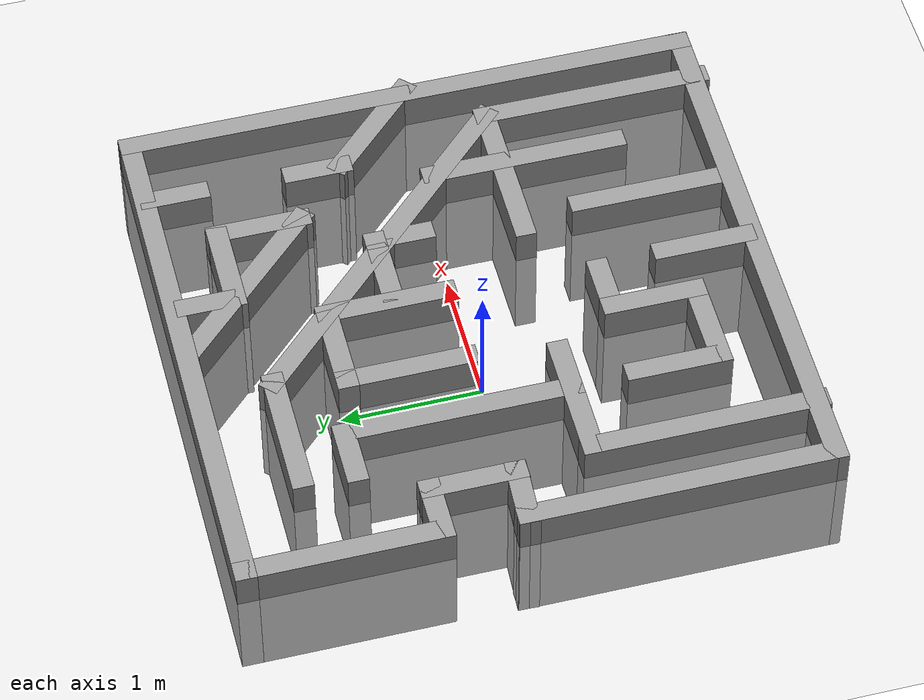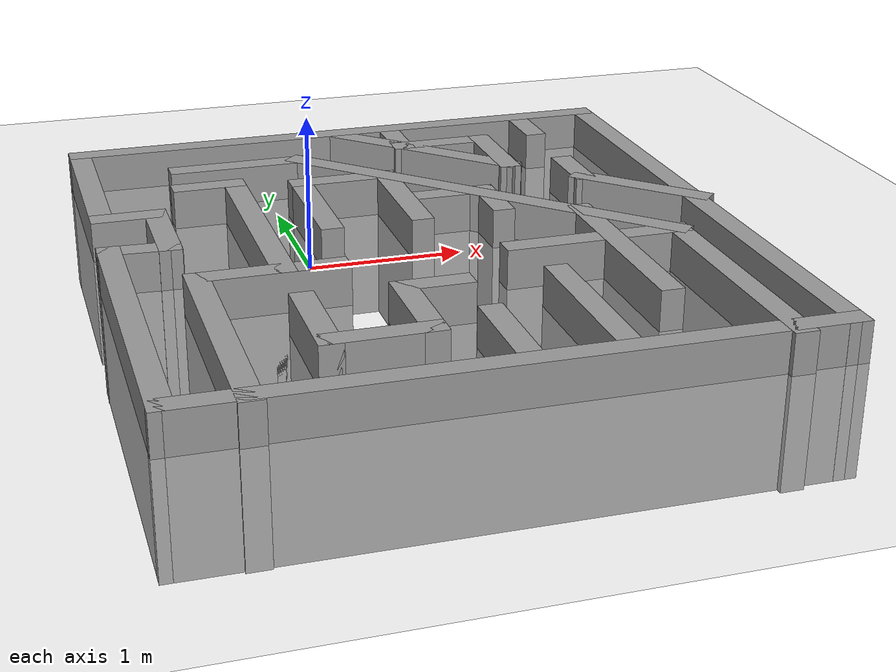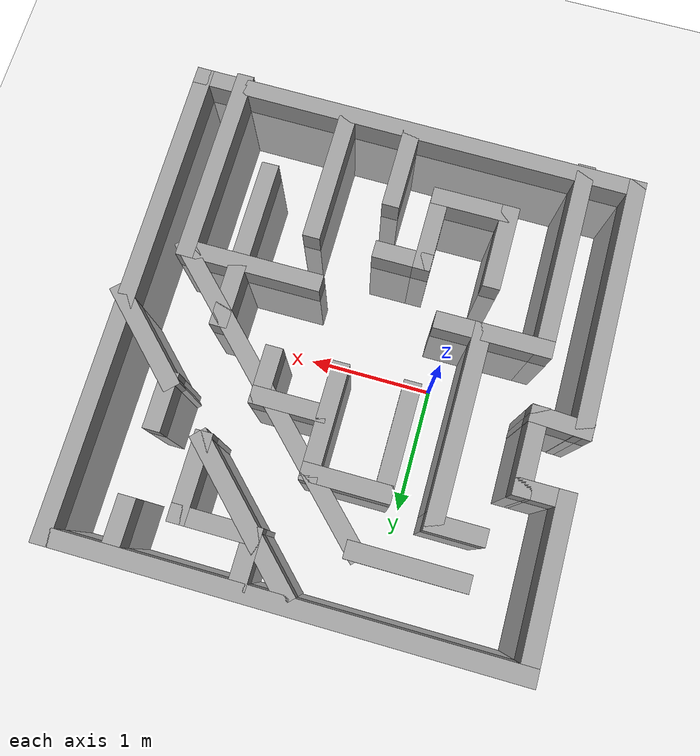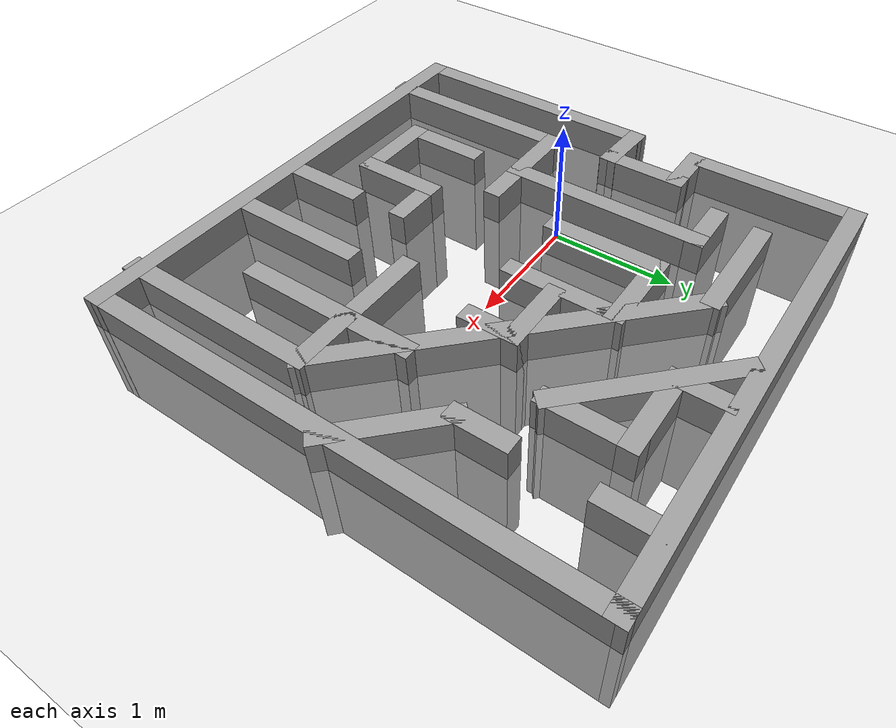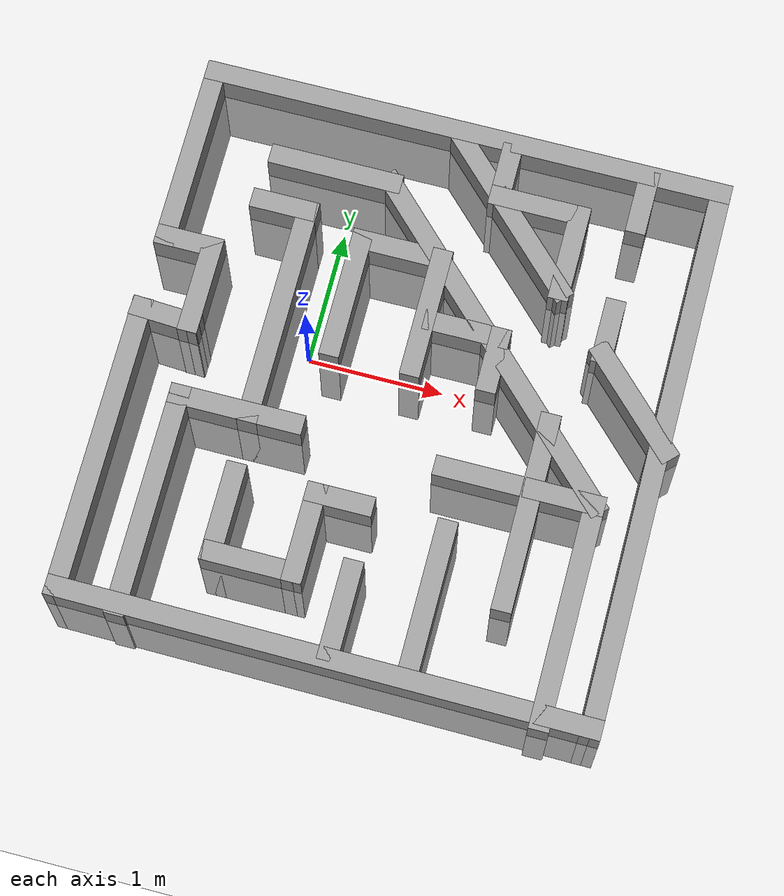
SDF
<?xml version="1.0"?>
<sdf version='1.7'>
  <world name='default'>
    <light name='sun' type='directional'>
      <cast_shadows>1</cast_shadows>
      <pose>0 0 10 0 -0 0</pose>
      <diffuse>0.8 0.8 0.8 1</diffuse>
      <specular>0.2 0.2 0.2 1</specular>
      <attenuation>
        <range>1000</range>
        <constant>0.9</constant>
        <linear>0.01</linear>
        <quadratic>0.001</quadratic>
      </attenuation>
      <direction>-0.5 0.1 -0.9</direction>
      <spot>
        <inner_angle>0</inner_angle>
        <outer_angle>0</outer_angle>
        <falloff>0</falloff>
      </spot>
    </light>
    <model name='ground_plane'>
      <static>1</static>
      <link name='link'>
        <collision name='collision'>
          <geometry>
            <plane>
              <normal>0 0 1</normal>
              <size>100 100</size>
            </plane>
          </geometry>
          <surface>
            <contact>
              <collide_bitmask>65535</collide_bitmask>
              <ode/>
            </contact>
            <friction>
              <ode>
                <mu>100</mu>
                <mu2>50</mu2>
              </ode>
              <torsional>
                <ode/>
              </torsional>
            </friction>
            <bounce/>
          </surface>
          <max_contacts>10</max_contacts>
        </collision>
        <visual name='visual'>
          <cast_shadows>0</cast_shadows>
          <geometry>
            <plane>
              <normal>0 0 1</normal>
              <size>100 100</size>
            </plane>
          </geometry>
          <material>
            <script>
              <uri>file://media/materials/scripts/gazebo.material</uri>
              <name>Gazebo/Grey</name>
            </script>
          </material>
        </visual>
        <self_collide>0</self_collide>
        <enable_wind>0</enable_wind>
        <kinematic>0</kinematic>
      </link>
    </model>
    <gravity>0 0 -9.8</gravity>
    <magnetic_field>6e-06 2.3e-05 -4.2e-05</magnetic_field>
    <atmosphere type='adiabatic'/>
    <physics type='ode'>
      <max_step_size>0.001</max_step_size>
      <real_time_factor>1</real_time_factor>
      <real_time_update_rate>1000</real_time_update_rate>
    </physics>
    <scene>
      <ambient>0.4 0.4 0.4 1</ambient>
      <background>0.7 0.7 0.7 1</background>
      <shadows>1</shadows>
    </scene>
    <audio>
      <device>default</device>
    </audio>
    <wind/>

    <model name="mazeSWY">
      <static>1</static>
      <pose>0.699615 -0.12817 -0.743142 0 -0 0</pose>
      <include>
        <uri>model://mazeSWY</uri>
      </include>
    </model>

  </world>
</sdf>

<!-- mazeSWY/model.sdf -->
<sdf version='1.6'>
  <model name='mazeSWY'>
    <pose frame=''>0.013574 -0.002409 0 0 -0 0</pose>
    <link name='Wall_0'>
      <collision name='Wall_0_Collision'>
        <geometry>
          <box>
            <size>4.03012 0.15 1</size>
          </box>
        </geometry>
        <pose frame=''>0 0 0.5 0 -0 0</pose>
      </collision>
      <visual name='Wall_0_Visual'>
        <pose frame=''>0 0 0.5 0 -0 0</pose>
        <geometry>
          <box>
            <size>4.03012 0.15 1</size>
          </box>
        </geometry>
        <material>
          <script>
            <uri>file://media/materials/scripts/gazebo.material</uri>
            <name>Gazebo/Grey</name>
          </script>
          <ambient>1 1 1 1</ambient>
        </material>
      </visual>
      <pose frame=''>-0.033574 -2.02259 0 0 0 -0.007732</pose>
    </link>
    <link name='Wall_11'>
      <collision name='Wall_11_Collision'>
        <geometry>
          <box>
            <size>1.75 0.15 1</size>
          </box>
        </geometry>
        <pose frame=''>0 0 0.5 0 -0 0</pose>
      </collision>
      <visual name='Wall_11_Visual'>
        <pose frame=''>0 0 0.5 0 -0 0</pose>
        <geometry>
          <box>
            <size>1.75 0.15 1</size>
          </box>
        </geometry>
        <material>
          <script>
            <uri>file://media/materials/scripts/gazebo.material</uri>
            <name>Gazebo/Grey</name>
          </script>
          <ambient>1 1 1 1</ambient>
        </material>
      </visual>
      <pose frame=''>-1.52357 -1.22759 0 0 -0 1.5708</pose>
    </link>

    <link name='Wall_2'>
      <collision name='Wall_2_Collision'>
        <geometry>
          <box>
            <size>4.26001 0.15 1</size>
          </box>
        </geometry>
        <pose frame=''>0 0 0.5 0 -0 0</pose>
      </collision>
      <visual name='Wall_2_Visual'>
        <pose frame=''>0 0 0.5 0 -0 0</pose>
        <geometry>
          <box>
            <size>4.26001 0.15 1</size>
          </box>
        </geometry>
        <material>
          <script>
            <uri>file://media/materials/scripts/gazebo.material</uri>
            <name>Gazebo/Grey</name>
          </script>
          <ambient>1 1 1 1</ambient>
        </material>
      </visual>
      <pose frame=''>1.90143 0.017409 0 0 -0 1.57323</pose>
    </link>
    <link name='Wall_205'>
      <collision name='Wall_205_Collision'>
        <geometry>
          <box>
            <size>1 0.15 1</size>
          </box>
        </geometry>
        <pose frame=''>0 0 0.5 0 -0 0</pose>
      </collision>
      <visual name='Wall_205_Visual'>
        <pose frame=''>0 0 0.5 0 -0 0</pose>
        <geometry>
          <box>
            <size>1 0.15 1</size>
          </box>
        </geometry>
        <material>
          <script>
            <uri>file://media/materials/scripts/gazebo.material</uri>
            <name>Gazebo/Grey</name>
          </script>
          <ambient>1 1 1 1</ambient>
        </material>
      </visual>
      <pose frame=''>-1.09857 -0.427591 0 0 -0 0</pose>
    </link>
    <link name='Wall_21'>
      <collision name='Wall_21_Collision'>
        <geometry>
          <box>
            <size>1.75 0.15 1</size>
          </box>
        </geometry>
        <pose frame=''>0 0 0.5 0 -0 0</pose>
      </collision>
      <visual name='Wall_21_Visual'>
        <pose frame=''>0 0 0.5 0 -0 0</pose>
        <geometry>
          <box>
            <size>1.75 0.15 1</size>
          </box>
        </geometry>
        <material>
          <script>
            <uri>file://media/materials/scripts/gazebo.material</uri>
            <name>Gazebo/Grey</name>
          </script>
          <ambient>1 1 1 1</ambient>
        </material>
      </visual>
      <pose frame=''>-1.00357 0.372409 0 0 -0 1.5708</pose>
    </link>
    <link name='Wall_22'>
      <collision name='Wall_22_Collision'>
        <geometry>
          <box>
            <size>0.5 0.15 1</size>
          </box>
        </geometry>
        <pose frame=''>0 0 0.5 0 -0 0</pose>
      </collision>
      <visual name='Wall_22_Visual'>
        <pose frame=''>0 0 0.5 0 -0 0</pose>
        <geometry>
          <box>
            <size>0.5 0.15 1</size>
          </box>
        </geometry>
        <material>
          <script>
            <uri>file://media/materials/scripts/gazebo.material</uri>
            <name>Gazebo/Grey</name>
          </script>
          <ambient>1 1 1 1</ambient>
        </material>
      </visual>
      <pose frame=''>-1.17857 1.17241 0 0 -0 3.14159</pose>
    </link>
    <link name='Wall_24'>
      <collision name='Wall_24_Collision'>
        <geometry>
          <box>
            <size>0.75 0.15 1</size>
          </box>
        </geometry>
        <pose frame=''>0 0 0.5 0 -0 0</pose>
      </collision>
      <visual name='Wall_24_Visual'>
        <pose frame=''>0 0 0.5 0 -0 0</pose>
        <geometry>
          <box>
            <size>0.75 0.15 1</size>
          </box>
        </geometry>
        <material>
          <script>
            <uri>file://media/materials/scripts/gazebo.material</uri>
            <name>Gazebo/Grey</name>
          </script>
          <ambient>1 1 1 1</ambient>
        </material>
      </visual>
      <pose frame=''>-0.983574 -1.18759 0 0 0 -1.5708</pose>
    </link>
    <link name='Wall_25'>
      <collision name='Wall_25_Collision'>
        <geometry>
          <box>
            <size>0.75 0.15 1</size>
          </box>
        </geometry>
        <pose frame=''>0 0 0.5 0 -0 0</pose>
      </collision>
      <visual name='Wall_25_Visual'>
        <pose frame=''>0 0 0.5 0 -0 0</pose>
        <geometry>
          <box>
            <size>0.75 0.15 1</size>
          </box>
        </geometry>
        <material>
          <script>
            <uri>file://media/materials/scripts/gazebo.material</uri>
            <name>Gazebo/Grey</name>
          </script>
          <ambient>1 1 1 1</ambient>
        </material>
      </visual>
      <pose frame=''>-0.683574 -1.48759 0 0 -0 0</pose>
    </link>
    <link name='Wall_26'>
      <collision name='Wall_26_Collision'>
        <geometry>
          <box>
            <size>0.75 0.15 1</size>
          </box>
        </geometry>
        <pose frame=''>0 0 0.5 0 -0 0</pose>
      </collision>
      <visual name='Wall_26_Visual'>
        <pose frame=''>0 0 0.5 0 -0 0</pose>
        <geometry>
          <box>
            <size>0.75 0.15 1</size>
          </box>
        </geometry>
        <material>
          <script>
            <uri>file://media/materials/scripts/gazebo.material</uri>
            <name>Gazebo/Grey</name>
          </script>
          <ambient>1 1 1 1</ambient>
        </material>
      </visual>
      <pose frame=''>-0.383574 -1.18759 0 0 -0 1.5708</pose>
    </link>
    <link name='Wall_27'>
      <collision name='Wall_27_Collision'>
        <geometry>
          <box>
            <size>0.5 0.15 1</size>
          </box>
        </geometry>
        <pose frame=''>0 0 0.5 0 -0 0</pose>
      </collision>
      <visual name='Wall_27_Visual'>
        <pose frame=''>0 0 0.5 0 -0 0</pose>
        <geometry>
          <box>
            <size>0.5 0.15 1</size>
          </box>
        </geometry>
        <material>
          <script>
            <uri>file://media/materials/scripts/gazebo.material</uri>
            <name>Gazebo/Grey</name>
          </script>
          <ambient>1 1 1 1</ambient>
        </material>
      </visual>
      <pose frame=''>-0.208574 -0.887591 0 0 -0 0</pose>
    </link>
    <link name='Wall_29'>
      <collision name='Wall_29_Collision'>
        <geometry>
          <box>
            <size>1 0.15 1</size>
          </box>
        </geometry>
        <pose frame=''>0 0 0.5 0 -0 0</pose>
      </collision>
      <visual name='Wall_29_Visual'>
        <pose frame=''>0 0 0.5 0 -0 0</pose>
        <geometry>
          <box>
            <size>1 0.15 1</size>
          </box>
        </geometry>
        <material>
          <script>
            <uri>file://media/materials/scripts/gazebo.material</uri>
            <name>Gazebo/Grey</name>
          </script>
          <ambient>1 1 1 1</ambient>
        </material>
      </visual>
      <pose frame=''>-0.888574 1.54241 0 0 -0 0</pose>
    </link>
    <link name='Wall_30'>
      <collision name='Wall_30_Collision'>
        <geometry>
          <box>
            <size>3 0.15 1</size>
          </box>
        </geometry>
        <pose frame=''>0 0 0.5 0 -0 0</pose>
      </collision>
      <visual name='Wall_30_Visual'>
        <pose frame=''>0 0 0.5 0 -0 0</pose>
        <geometry>
          <box>
            <size>3 0.15 1</size>
          </box>
        </geometry>
        <material>
          <script>
            <uri>file://media/materials/scripts/gazebo.material</uri>
            <name>Gazebo/Grey</name>
          </script>
          <ambient>1 1 1 1</ambient>
        </material>
      </visual>
      <pose frame=''>0.543926 0.534909 0 0 0 -0.785398</pose>
    </link>
    <link name='Wall_31'>
      <collision name='Wall_31_Collision'>
        <geometry>
          <box>
            <size>1.75 0.15 1</size>
          </box>
        </geometry>
        <pose frame=''>0 0 0.5 0 -0 0</pose>
      </collision>
      <visual name='Wall_31_Visual'>
        <pose frame=''>0 0 0.5 0 -0 0</pose>
        <geometry>
          <box>
            <size>1.75 0.15 1</size>
          </box>
        </geometry>
        <material>
          <script>
            <uri>file://media/materials/scripts/gazebo.material</uri>
            <name>Gazebo/Grey</name>
          </script>
          <ambient>1 1 1 1</ambient>
        </material>
      </visual>
      <pose frame=''>1.55143 -1.27259 0 0 0 -1.5708</pose>
    </link>
    <link name='Wall_33'>
      <collision name='Wall_33_Collision'>
        <geometry>
          <box>
            <size>0.75 0.15 1</size>
          </box>
        </geometry>
        <pose frame=''>0 0 0.5 0 -0 0</pose>
      </collision>
      <visual name='Wall_33_Visual'>
        <pose frame=''>0 0 0.5 0 -0 0</pose>
        <geometry>
          <box>
            <size>0.75 0.15 1</size>
          </box>
        </geometry>
        <material>
          <script>
            <uri>file://media/materials/scripts/gazebo.material</uri>
            <name>Gazebo/Grey</name>
          </script>
          <ambient>1 1 1 1</ambient>
        </material>
      </visual>
      <pose frame=''>-0.263574 1.05241 0 0 -0 3.14159</pose>
    </link>
    <link name='Wall_34'>
      <collision name='Wall_34_Collision'>
        <geometry>
          <box>
            <size>1 0.15 1</size>
          </box>
        </geometry>
        <pose frame=''>0 0 0.5 0 -0 0</pose>
      </collision>
      <visual name='Wall_34_Visual'>
        <pose frame=''>0 0 0.5 0 -0 0</pose>
        <geometry>
          <box>
            <size>1 0.15 1</size>
          </box>
        </geometry>
        <material>
          <script>
            <uri>file://media/materials/scripts/gazebo.material</uri>
            <name>Gazebo/Grey</name>
          </script>
          <ambient>1 1 1 1</ambient>
        </material>
      </visual>
      <pose frame=''>-0.563574 0.627409 0 0 0 -1.5708</pose>
    </link>
    <link name='Wall_36'>
      <collision name='Wall_36_Collision'>
        <geometry>
          <box>
            <size>1 0.15 1</size>
          </box>
        </geometry>
        <pose frame=''>0 0 0.5 0 -0 0</pose>
      </collision>
      <visual name='Wall_36_Visual'>
        <pose frame=''>0 0 0.5 0 -0 0</pose>
        <geometry>
          <box>
            <size>1 0.15 1</size>
          </box>
        </geometry>
        <material>
          <script>
            <uri>file://media/materials/scripts/gazebo.material</uri>
            <name>Gazebo/Grey</name>
          </script>
          <ambient>1 1 1 1</ambient>
        </material>
      </visual>
      <pose frame=''>0.036426 0.627409 0 0 0 -1.5708</pose>
    </link>
    <link name='Wall_38'>
      <collision name='Wall_38_Collision'>
        <geometry>
          <box>
            <size>0.64 0.15 1</size>
          </box>
        </geometry>
        <pose frame=''>0 0 0.5 0 -0 0</pose>
      </collision>
      <visual name='Wall_38_Visual'>
        <pose frame=''>0 0 0.5 0 -0 0</pose>
        <geometry>
          <box>
            <size>0.64 0.15 1</size>
          </box>
        </geometry>
        <material>
          <script>
            <uri>file://media/materials/scripts/gazebo.material</uri>
            <name>Gazebo/Grey</name>
          </script>
          <ambient>1 1 1 1</ambient>
        </material>
      </visual>
      <pose frame=''>0.351426 0.572409 0 0 -0 0</pose>
    </link>
    <link name='Wall_4'>
      <collision name='Wall_4_Collision'>
        <geometry>
          <box>
            <size>4 0.15 1</size>
          </box>
        </geometry>
        <pose frame=''>0 0 0.5 0 -0 0</pose>
      </collision>
      <visual name='Wall_4_Visual'>
        <pose frame=''>0 0 0.5 0 -0 0</pose>
        <geometry>
          <box>
            <size>4 0.15 1</size>
          </box>
        </geometry>
        <material>
          <script>
            <uri>file://media/materials/scripts/gazebo.material</uri>
            <name>Gazebo/Grey</name>
          </script>
          <ambient>1 1 1 1</ambient>
        </material>
      </visual>
      <pose frame=''>-0.028574 2.07241 0 0 -0 3.14159</pose>
    </link>
    <link name='Wall_42'>
      <collision name='Wall_42_Collision'>
        <geometry>
          <box>
            <size>0.5 0.15 1</size>
          </box>
        </geometry>
        <pose frame=''>0 0 0.5 0 -0 0</pose>
      </collision>
      <visual name='Wall_42_Visual'>
        <pose frame=''>0 0 0.5 0 -0 0</pose>
        <geometry>
          <box>
            <size>0.5 0.15 1</size>
          </box>
        </geometry>
        <material>
          <script>
            <uri>file://media/materials/scripts/gazebo.material</uri>
            <name>Gazebo/Grey</name>
          </script>
          <ambient>1 1 1 1</ambient>
        </material>
      </visual>
      <pose frame=''>0.596426 0.397409 0 0 0 -1.5708</pose>
    </link>
    <link name='Wall_44'>
      <collision name='Wall_44_Collision'>
        <geometry>
          <box>
            <size>1.5 0.15 1</size>
          </box>
        </geometry>
        <pose frame=''>0 0 0.5 0 -0 0</pose>
      </collision>
      <visual name='Wall_44_Visual'>
        <pose frame=''>0 0 0.5 0 -0 0</pose>
        <geometry>
          <box>
            <size>1.5 0.15 1</size>
          </box>
        </geometry>
        <material>
          <script>
            <uri>file://media/materials/scripts/gazebo.material</uri>
            <name>Gazebo/Grey</name>
          </script>
          <ambient>1 1 1 1</ambient>
        </material>
      </visual>
      <pose frame=''>1.09643 -0.642591 0 0 0 -1.5708</pose>
    </link>
    <link name='Wall_46'>
      <collision name='Wall_46_Collision'>
        <geometry>
          <box>
            <size>1.25 0.15 1</size>
          </box>
        </geometry>
        <pose frame=''>0 0 0.5 0 -0 0</pose>
      </collision>
      <visual name='Wall_46_Visual'>
        <pose frame=''>0 0 0.5 0 -0 0</pose>
        <geometry>
          <box>
            <size>1.25 0.15 1</size>
          </box>
        </geometry>
        <material>
          <script>
            <uri>file://media/materials/scripts/gazebo.material</uri>
            <name>Gazebo/Grey</name>
          </script>
          <ambient>1 1 1 1</ambient>
        </material>
      </visual>
      <pose frame=''>1.00143 -0.472591 0 0 -0 3.14159</pose>
    </link>
    <link name='Wall_48'>
      <collision name='Wall_48_Collision'>
        <geometry>
          <box>
            <size>1.25 0.15 1</size>
          </box>
        </geometry>
        <pose frame=''>0 0 0.5 0 -0 0</pose>
      </collision>
      <visual name='Wall_48_Visual'>
        <pose frame=''>0 0 0.5 0 -0 0</pose>
        <geometry>
          <box>
            <size>1.25 0.15 1</size>
          </box>
        </geometry>
        <material>
          <script>
            <uri>file://media/materials/scripts/gazebo.material</uri>
            <name>Gazebo/Grey</name>
          </script>
          <ambient>1 1 1 1</ambient>
        </material>
      </visual>
      <pose frame=''>0.576426 -1.46759 0 0 -0 1.5708</pose>
    </link>
    <link name='Wall_5'>
      <collision name='Wall_5_Collision'>
        <geometry>
          <box>
            <size>1.5 0.15 1</size>
          </box>
        </geometry>
        <pose frame=''>0 0 0.5 0 -0 0</pose>
      </collision>
      <visual name='Wall_5_Visual'>
        <pose frame=''>0 0 0.5 0 -0 0</pose>
        <geometry>
          <box>
            <size>1.5 0.15 1</size>
          </box>
        </geometry>
        <material>
          <script>
            <uri>file://media/materials/scripts/gazebo.material</uri>
            <name>Gazebo/Grey</name>
          </script>
          <ambient>1 1 1 1</ambient>
        </material>
      </visual>
      <pose frame=''>-1.95357 1.39741 0 0 0 -1.5708</pose>
    </link>
    <link name='Wall_50'>
      <collision name='Wall_50_Collision'>
        <geometry>
          <box>
            <size>0.75 0.15 1</size>
          </box>
        </geometry>
        <pose frame=''>0 0 0.5 0 -0 0</pose>
      </collision>
      <visual name='Wall_50_Visual'>
        <pose frame=''>0 0 0.5 0 -0 0</pose>
        <geometry>
          <box>
            <size>0.75 0.15 1</size>
          </box>
        </geometry>
        <material>
          <script>
            <uri>file://media/materials/scripts/gazebo.material</uri>
            <name>Gazebo/Grey</name>
          </script>
          <ambient>1 1 1 1</ambient>
        </material>
      </visual>
      <pose frame=''>0.006426 -1.66759 0 0 -0 1.5708</pose>
    </link>
    <link name='Wall_52'>
      <collision name='Wall_52_Collision'>
        <geometry>
          <box>
            <size>1 0.15 1</size>
          </box>
        </geometry>
        <pose frame=''>0 0 0.5 0 -0 0</pose>
      </collision>
      <visual name='Wall_52_Visual'>
        <pose frame=''>0 0 0.5 0 -0 0</pose>
        <geometry>
          <box>
            <size>1 0.15 1</size>
          </box>
        </geometry>
        <material>
          <script>
            <uri>file://media/materials/scripts/gazebo.material</uri>
            <name>Gazebo/Grey</name>
          </script>
          <ambient>1 1 1 1</ambient>
        </material>
      </visual>
      <pose frame=''>1.64593 0.342909 0 0 -0 2.35619</pose>
    </link>
    <link name='Wall_53'>
      <collision name='Wall_53_Collision'>
        <geometry>
          <box>
            <size>0.5 0.15 1</size>
          </box>
        </geometry>
        <pose frame=''>0 0 0.5 0 -0 0</pose>
      </collision>
      <visual name='Wall_53_Visual'>
        <pose frame=''>0 0 0.5 0 -0 0</pose>
        <geometry>
          <box>
            <size>0.5 0.15 1</size>
          </box>
        </geometry>
        <material>
          <script>
            <uri>file://media/materials/scripts/gazebo.material</uri>
            <name>Gazebo/Grey</name>
          </script>
          <ambient>1 1 1 1</ambient>
        </material>
      </visual>
      <pose frame=''>1.34543 0.818409 0 0 -0 1.5708</pose>
    </link>
    <link name='Wall_55'>
      <collision name='Wall_55_Collision'>
        <geometry>
          <box>
            <size>0.5 0.15 1</size>
          </box>
        </geometry>
        <pose frame=''>0 0 0.5 0 -0 0</pose>
      </collision>
      <visual name='Wall_55_Visual'>
        <pose frame=''>0 0 0.5 0 -0 0</pose>
        <geometry>
          <box>
            <size>0.5 0.15 1</size>
          </box>
        </geometry>
        <material>
          <script>
            <uri>file://media/materials/scripts/gazebo.material</uri>
            <name>Gazebo/Grey</name>
          </script>
          <ambient>1 1 1 1</ambient>
        </material>
      </visual>
      <pose frame=''>1.35643 1.85741 0 0 0 -1.5708</pose>
    </link>
    <link name='Wall_57'>
      <collision name='Wall_57_Collision'>
        <geometry>
          <box>
            <size>1.50057 0.15 1</size>
          </box>
        </geometry>
        <pose frame=''>0 0 0.5 0 -0 0</pose>
      </collision>
      <visual name='Wall_57_Visual'>
        <pose frame=''>0 0 0.5 0 -0 0</pose>
        <geometry>
          <box>
            <size>1.50057 0.15 1</size>
          </box>
        </geometry>
        <material>
          <script>
            <uri>file://media/materials/scripts/gazebo.material</uri>
            <name>Gazebo/Grey</name>
          </script>
          <ambient>1 1 1 1</ambient>
        </material>
      </visual>
      <pose frame=''>0.453926 1.51491 0 0 0 -0.785398</pose>
    </link>
    <link name='Wall_58'>
      <collision name='Wall_58_Collision'>
        <geometry>
          <box>
            <size>0.750406 0.15 1</size>
          </box>
        </geometry>
        <pose frame=''>0 0 0.5 0 -0 0</pose>
      </collision>
      <visual name='Wall_58_Visual'>
        <pose frame=''>0 0 0.5 0 -0 0</pose>
        <geometry>
          <box>
            <size>0.750406 0.15 1</size>
          </box>
        </geometry>
        <material>
          <script>
            <uri>file://media/materials/scripts/gazebo.material</uri>
            <name>Gazebo/Grey</name>
          </script>
          <ambient>1 1 1 1</ambient>
        </material>
      </visual>
      <pose frame=''>0.931426 1.33741 0 0 -0 1.5708</pose>
    </link>
    <link name='Wall_59'>
      <collision name='Wall_59_Collision'>
        <geometry>
          <box>
            <size>0.75 0.15 1</size>
          </box>
        </geometry>
        <pose frame=''>0 0 0.5 0 -0 0</pose>
      </collision>
      <visual name='Wall_59_Visual'>
        <pose frame=''>0 0 0.5 0 -0 0</pose>
        <geometry>
          <box>
            <size>0.75 0.15 1</size>
          </box>
        </geometry>
        <material>
          <script>
            <uri>file://media/materials/scripts/gazebo.material</uri>
            <name>Gazebo/Grey</name>
          </script>
          <ambient>1 1 1 1</ambient>
        </material>
      </visual>
      <pose frame=''>0.631426 1.63741 0 0 -0 3.14159</pose>
    </link>
    <link name='Wall_6'>
      <collision name='Wall_6_Collision'>
        <geometry>
          <box>
            <size>0.5 0.15 1</size>
          </box>
        </geometry>
        <pose frame=''>0 0 0.5 0 -0 0</pose>
      </collision>
      <visual name='Wall_6_Visual'>
        <pose frame=''>0 0 0.5 0 -0 0</pose>
        <geometry>
          <box>
            <size>0.5 0.15 1</size>
          </box>
        </geometry>
        <material>
          <script>
            <uri>file://media/materials/scripts/gazebo.material</uri>
            <name>Gazebo/Grey</name>
          </script>
          <ambient>1 1 1 1</ambient>
        </material>
      </visual>
      <pose frame=''>-1.77857 0.722409 0 0 -0 0</pose>
    </link>
    <link name='Wall_60'>
      <collision name='Wall_60_Collision'>
        <geometry>
          <box>
            <size>0.5 0.15 1</size>
          </box>
        </geometry>
        <pose frame=''>0 0 0.5 0 -0 0</pose>
      </collision>
      <visual name='Wall_60_Visual'>
        <pose frame=''>0 0 0.5 0 -0 0</pose>
        <geometry>
          <box>
            <size>0.5 0.15 1</size>
          </box>
        </geometry>
        <material>
          <script>
            <uri>file://media/materials/scripts/gazebo.material</uri>
            <name>Gazebo/Grey</name>
          </script>
          <ambient>1 1 1 1</ambient>
        </material>
      </visual>
      <pose frame=''>0.331426 1.81241 0 0 -0 1.5708</pose>
    </link>
    <link name='Wall_7'>
      <collision name='Wall_7_Collision'>
        <geometry>
          <box>
            <size>0.75 0.15 1</size>
          </box>
        </geometry>
        <pose frame=''>0 0 0.5 0 -0 0</pose>
      </collision>
      <visual name='Wall_7_Visual'>
        <pose frame=''>0 0 0.5 0 -0 0</pose>
        <geometry>
          <box>
            <size>0.75 0.15 1</size>
          </box>
        </geometry>
        <material>
          <script>
            <uri>file://media/materials/scripts/gazebo.material</uri>
            <name>Gazebo/Grey</name>
          </script>
          <ambient>1 1 1 1</ambient>
        </material>
      </visual>
      <pose frame=''>-1.60357 0.422409 0 0 0 -1.5708</pose>
    </link>
    <link name='Wall_8'>
      <collision name='Wall_8_Collision'>
        <geometry>
          <box>
            <size>0.52054 0.15 1</size>
          </box>
        </geometry>
        <pose frame=''>0 0 0.5 0 -0 0</pose>
      </collision>
      <visual name='Wall_8_Visual'>
        <pose frame=''>0 0 0.5 0 -0 0</pose>
        <geometry>
          <box>
            <size>0.52054 0.15 1</size>
          </box>
        </geometry>
        <material>
          <script>
            <uri>file://media/materials/scripts/gazebo.material</uri>
            <name>Gazebo/Grey</name>
          </script>
          <ambient>1 1 1 1</ambient>
        </material>
      </visual>
      <pose frame=''>-1.78857 0.132409 0 0 -0 3.08759</pose>
    </link>
    <link name='Wall_9'>
      <collision name='Wall_9_Collision'>
        <geometry>
          <box>
            <size>2.3 0.15 1</size>
          </box>
        </geometry>
        <pose frame=''>0 0 0.5 0 -0 0</pose>
      </collision>
      <visual name='Wall_9_Visual'>
        <pose frame=''>0 0 0.5 0 -0 0</pose>
        <geometry>
          <box>
            <size>2.3 0.15 1</size>
          </box>
        </geometry>
        <material>
          <script>
            <uri>file://media/materials/scripts/gazebo.material</uri>
            <name>Gazebo/Grey</name>
          </script>
          <ambient>1 1 1 1</ambient>
        </material>
      </visual>
      <pose frame=''>-1.97357 -0.932591 0 0 0 -1.5708</pose>
    </link>
    <static>1</static>
  </model>
</sdf>
